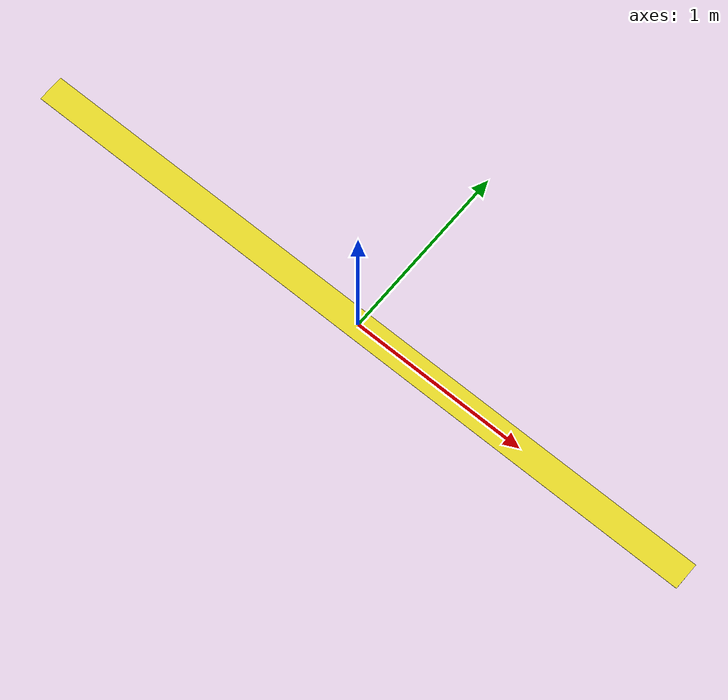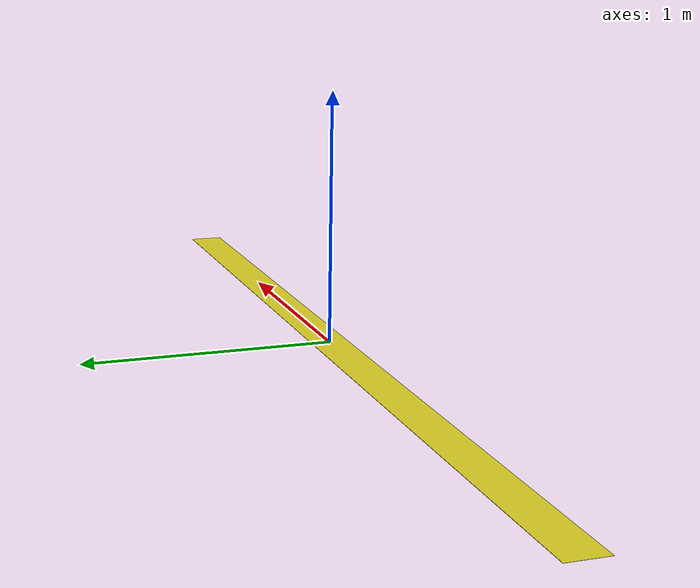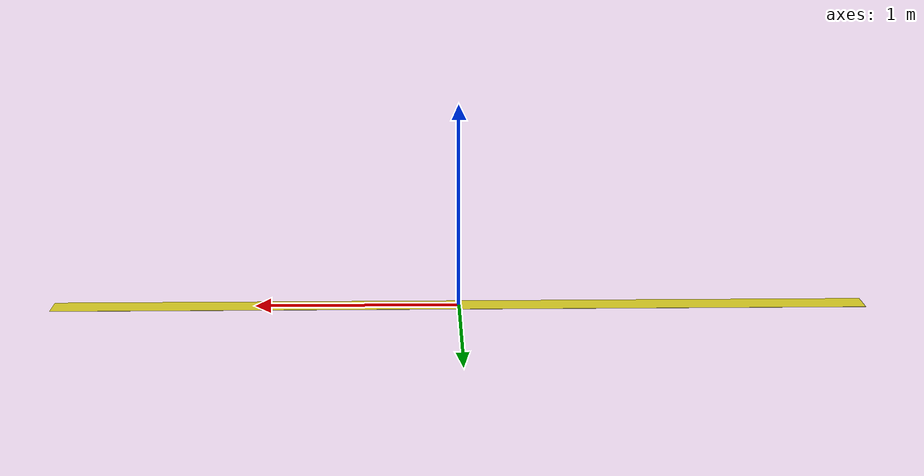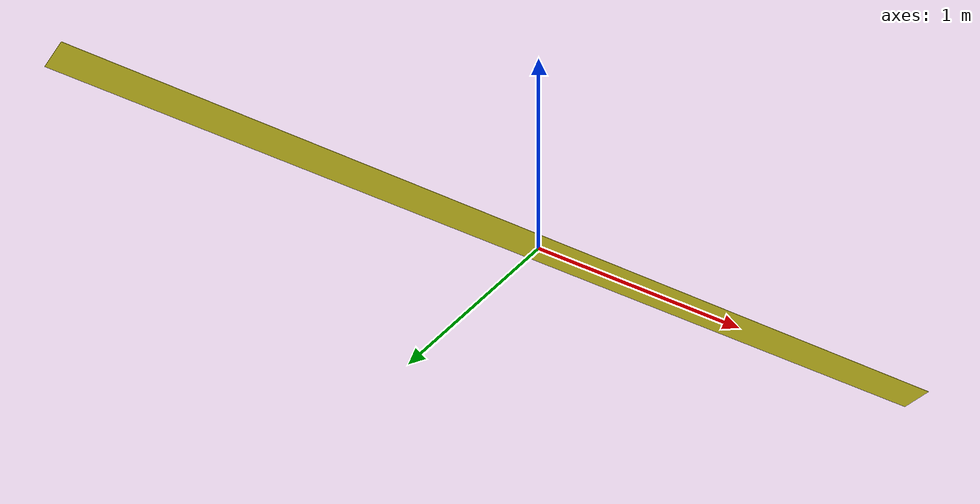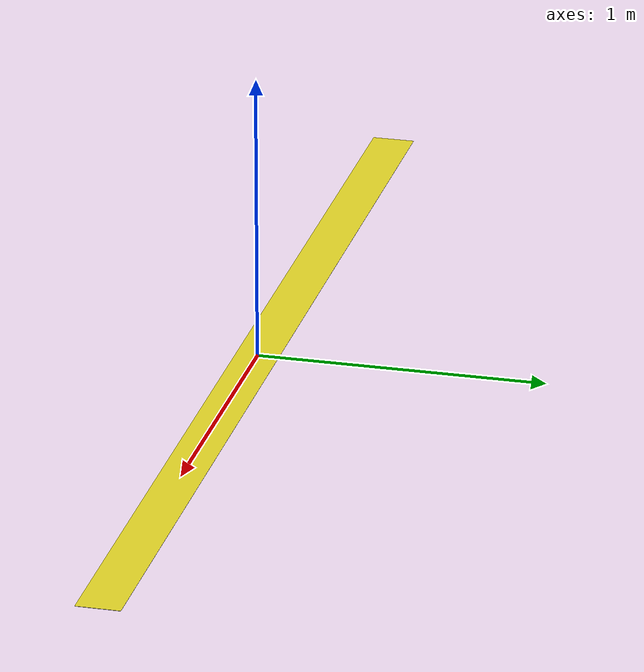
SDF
<?xml version="1.0" ?>
<sdf version="1.5">
  <model name="yellow_line">
    <static>true</static>
    <link name="link">
      <collision name="collision">
        <geometry>
          <box>
            <size>4.0 0.15 0.001</size>
          </box>
        </geometry>
      </collision>
      <visual name="visual">
        <geometry>
          <box>
            <size>4.0 0.15 0.001</size>
          </box>
        </geometry>
        <material>
          <script>
            <uri>file://media/materials/scripts/gazebo.material</uri>
            <name>Gazebo/Yellow</name>
          </script>
        </material>
      </visual>
    </link>
  </model>
</sdf>
